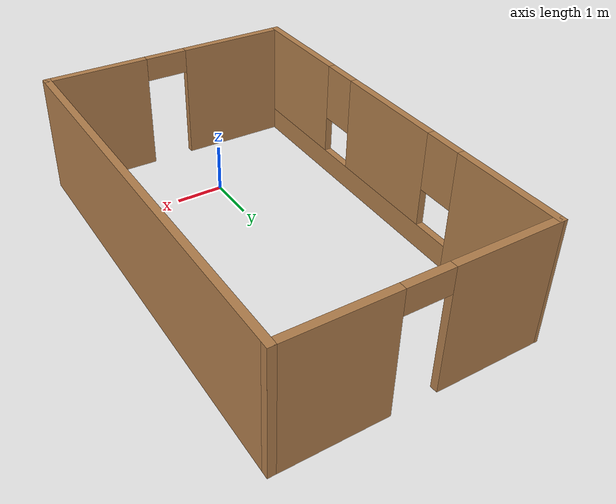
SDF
<?xml version='1.0'?>
<sdf version='1.7'>
  <model name='Test_World'>
    <pose>0.173926 2.48 0 0 -0 0</pose>
    <link name='Wall_0'>
      <pose>0.001074 -4.3 0 0 -0 0</pose>
      <visual name='Wall_0_Visual_0'>
        <pose>-1.54729 0 1.25 0 -0 0</pose>
        <geometry>
          <box>
            <size>2.40543 0.15 2.5</size>
          </box>
        </geometry>
        <material>
          <script>
            <uri>file://media/materials/scripts/gazebo.material</uri>
            <name>Gazebo/Wood</name>
          </script>
          <ambient>1 1 1 1</ambient>
        </material>
        <meta>
          <layer>0</layer>
        </meta>
      </visual>
      <collision name='Wall_0_Collision_0'>
        <geometry>
          <box>
            <size>2.40543 0.15 2.5</size>
          </box>
        </geometry>
        <pose>-1.54729 0 1.25 0 -0 0</pose>
      </collision>
      <visual name='Wall_0_Visual_1'>
        <pose>1.65271 0 1.25 0 -0 0</pose>
        <geometry>
          <box>
            <size>2.19457 0.15 2.5</size>
          </box>
        </geometry>
        <material>
          <script>
            <uri>file://media/materials/scripts/gazebo.material</uri>
            <name>Gazebo/Wood</name>
          </script>
          <ambient>1 1 1 1</ambient>
        </material>
        <meta>
          <layer>0</layer>
        </meta>
      </visual>
      <collision name='Wall_0_Collision_1'>
        <geometry>
          <box>
            <size>2.19457 0.15 2.5</size>
          </box>
        </geometry>
        <pose>1.65271 0 1.25 0 -0 0</pose>
      </collision>
      <visual name='Wall_0_Visual_2'>
        <pose>0.105425 0 2.25 0 -0 0</pose>
        <geometry>
          <box>
            <size>0.9 0.15 0.5</size>
          </box>
        </geometry>
        <material>
          <script>
            <uri>file://media/materials/scripts/gazebo.material</uri>
            <name>Gazebo/Wood</name>
          </script>
          <ambient>1 1 1 1</ambient>
        </material>
        <meta>
          <layer>0</layer>
        </meta>
      </visual>
      <collision name='Wall_0_Collision_2'>
        <geometry>
          <box>
            <size>0.9 0.15 0.5</size>
          </box>
        </geometry>
        <pose>0.105425 0 2.25 0 -0 0</pose>
      </collision>
    </link>
    <link name='Wall_1'>
      <collision name='Wall_1_Collision'>
        <geometry>
          <box>
            <size>8.75 0.15 2.5</size>
          </box>
        </geometry>
        <pose>0 0 1.25 0 -0 0</pose>
      </collision>
      <visual name='Wall_1_Visual'>
        <pose>0 0 1.25 0 -0 0</pose>
        <geometry>
          <box>
            <size>8.75 0.15 2.5</size>
          </box>
        </geometry>
        <material>
          <script>
            <uri>file://media/materials/scripts/gazebo.material</uri>
            <name>Gazebo/Wood</name>
          </script>
          <ambient>1 1 1 1</ambient>
        </material>
        <meta>
          <layer>0</layer>
        </meta>
      </visual>
      <pose>2.67607 0 0 0 -0 1.5708</pose>
    </link>
    <link name='Wall_2'>
      <pose>0.126074 4.3 0 0 -0 3.14159</pose>
      <visual name='Wall_2_Visual_0'>
        <pose>-1.54101 0 1.25 0 -0 0</pose>
        <geometry>
          <box>
            <size>2.16798 0.15 2.5</size>
          </box>
        </geometry>
        <material>
          <script>
            <uri>file://media/materials/scripts/gazebo.material</uri>
            <name>Gazebo/Wood</name>
          </script>
          <ambient>1 1 1 1</ambient>
        </material>
        <meta>
          <layer>0</layer>
        </meta>
      </visual>
      <collision name='Wall_2_Collision_0'>
        <geometry>
          <box>
            <size>2.16798 0.15 2.5</size>
          </box>
        </geometry>
        <pose>-1.54101 0 1.25 0 -0 0</pose>
      </collision>
      <visual name='Wall_2_Visual_1'>
        <pose>1.53399 0 1.25 0 -0 0</pose>
        <geometry>
          <box>
            <size>2.18202 0.15 2.5</size>
          </box>
        </geometry>
        <material>
          <script>
            <uri>file://media/materials/scripts/gazebo.material</uri>
            <name>Gazebo/Wood</name>
          </script>
          <ambient>1 1 1 1</ambient>
        </material>
        <meta>
          <layer>0</layer>
        </meta>
      </visual>
      <collision name='Wall_2_Collision_1'>
        <geometry>
          <box>
            <size>2.18202 0.15 2.5</size>
          </box>
        </geometry>
        <pose>1.53399 0 1.25 0 -0 0</pose>
      </collision>
      <visual name='Wall_2_Visual_2'>
        <pose>-0.007025 0 2.25 0 -0 0</pose>
        <geometry>
          <box>
            <size>0.9 0.15 0.5</size>
          </box>
        </geometry>
        <material>
          <script>
            <uri>file://media/materials/scripts/gazebo.material</uri>
            <name>Gazebo/Wood</name>
          </script>
          <ambient>1 1 1 1</ambient>
        </material>
        <meta>
          <layer>0</layer>
        </meta>
      </visual>
      <collision name='Wall_2_Collision_2'>
        <geometry>
          <box>
            <size>0.9 0.15 0.5</size>
          </box>
        </geometry>
        <pose>-0.007025 0 2.25 0 -0 0</pose>
      </collision>
    </link>
    <link name='Wall_3'>
      <pose>-2.54893 0 0 0 -0 -1.59986</pose>
      <visual name='Wall_3_Visual_0'>
        <pose>-3.21475 0 1.25 0 -0 0</pose>
        <geometry>
          <box>
            <size>2.32412 0.15 2.5</size>
          </box>
        </geometry>
        <material>
          <script>
            <uri>file://media/materials/scripts/gazebo.material</uri>
            <name>Gazebo/Wood</name>
          </script>
          <ambient>1 1 1 1</ambient>
        </material>
        <meta>
          <layer>0</layer>
        </meta>
      </visual>
      <collision name='Wall_3_Collision_0'>
        <geometry>
          <box>
            <size>2.32412 0.15 2.5</size>
          </box>
        </geometry>
        <pose>-3.21475 0 1.25 0 -0 0</pose>
      </collision>
      <visual name='Wall_3_Visual_1'>
        <pose>1.16206 0 0.25 0 -0 0</pose>
        <geometry>
          <box>
            <size>6.42951 0.15 0.5</size>
          </box>
        </geometry>
        <material>
          <script>
            <uri>file://media/materials/scripts/gazebo.material</uri>
            <name>Gazebo/Wood</name>
          </script>
          <ambient>1 1 1 1</ambient>
        </material>
        <meta>
          <layer>0</layer>
        </meta>
      </visual>
      <collision name='Wall_3_Collision_1'>
        <geometry>
          <box>
            <size>6.42951 0.15 0.5</size>
          </box>
        </geometry>
        <pose>1.16206 0 0.25 0 -0 0</pose>
      </collision>
      <visual name='Wall_3_Visual_2'>
        <pose>-0.040583 0 1.5 0 -0 0</pose>
        <geometry>
          <box>
            <size>2.42422 0.15 2</size>
          </box>
        </geometry>
        <material>
          <script>
            <uri>file://media/materials/scripts/gazebo.material</uri>
            <name>Gazebo/Wood</name>
          </script>
          <ambient>1 1 1 1</ambient>
        </material>
        <meta>
          <layer>0</layer>
        </meta>
      </visual>
      <collision name='Wall_3_Collision_2'>
        <geometry>
          <box>
            <size>2.42422 0.15 2</size>
          </box>
        </geometry>
        <pose>-0.040583 0 1.5 0 -0 0</pose>
      </collision>
      <visual name='Wall_3_Visual_3'>
        <pose>3.17417 0 1.5 0 -0 0</pose>
        <geometry>
          <box>
            <size>2.40529 0.15 2</size>
          </box>
        </geometry>
        <material>
          <script>
            <uri>file://media/materials/scripts/gazebo.material</uri>
            <name>Gazebo/Wood</name>
          </script>
          <ambient>1 1 1 1</ambient>
        </material>
        <meta>
          <layer>0</layer>
        </meta>
      </visual>
      <collision name='Wall_3_Collision_3'>
        <geometry>
          <box>
            <size>2.40529 0.15 2</size>
          </box>
        </geometry>
        <pose>3.17417 0 1.5 0 -0 0</pose>
      </collision>
      <visual name='Wall_3_Visual_4'>
        <pose>-1.65269 0 1.9 0 -0 0</pose>
        <geometry>
          <box>
            <size>0.8 0.15 1.2</size>
          </box>
        </geometry>
        <material>
          <script>
            <uri>file://media/materials/scripts/gazebo.material</uri>
            <name>Gazebo/Wood</name>
          </script>
          <ambient>1 1 1 1</ambient>
        </material>
        <meta>
          <layer>0</layer>
        </meta>
      </visual>
      <collision name='Wall_3_Collision_4'>
        <geometry>
          <box>
            <size>0.8 0.15 1.2</size>
          </box>
        </geometry>
        <pose>-1.65269 0 1.9 0 -0 0</pose>
      </collision>
      <visual name='Wall_3_Visual_5'>
        <pose>1.57153 0 1.9 0 -0 0</pose>
        <geometry>
          <box>
            <size>0.8 0.15 1.2</size>
          </box>
        </geometry>
        <material>
          <script>
            <uri>file://media/materials/scripts/gazebo.material</uri>
            <name>Gazebo/Wood</name>
          </script>
          <ambient>1 1 1 1</ambient>
        </material>
        <meta>
          <layer>0</layer>
        </meta>
      </visual>
      <collision name='Wall_3_Collision_5'>
        <geometry>
          <box>
            <size>0.8 0.15 1.2</size>
          </box>
        </geometry>
        <pose>1.57153 0 1.9 0 -0 0</pose>
      </collision>
    </link>
    <static>1</static>
  </model>
</sdf>
